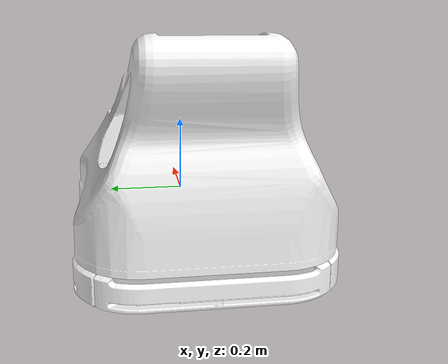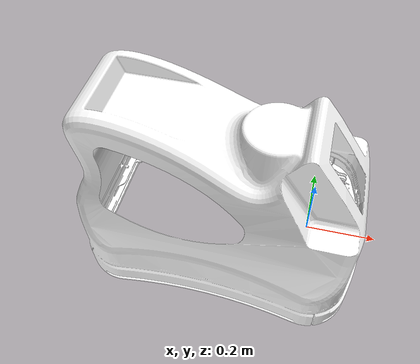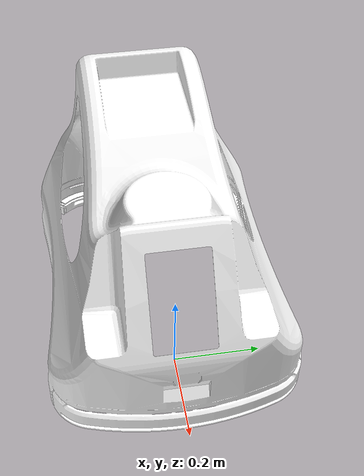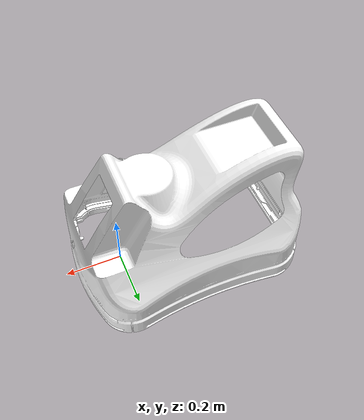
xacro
<?xml version="1.0"?>
<robot
  xmlns:xacro="http://www.ros.org/wiki/xacro"
  name="platform">

    <xacro:include filename="$(find fp_materials)/urdf/materials.urdf.xacro"/>

    <xacro:include
      filename="$(find platform_description)/urdf/sensors.urdf.xacro" />
    <xacro:property
    name="platform_param"
    value="${load_yaml('$(find platform_description)/config/LIOa.yaml')}" />

  <!--xacro:property name="lidar_front_rotation" value="$(env RDSCFG_fp_descriptions_lidar_front_rotation)"/-->
  <xacro:property name="lidar_front_rotation" value="0"/>
  <!--xacro:property name="lidar_back_rotation" value="$(env RDSCFG_fp_descriptions_lidar_back_rotation)"/-->
  <xacro:property name="lidar_back_rotation" value="3.14"/>

  <link name="base_footprint">

  </link>
  <joint name="base_joint" type="fixed">

    <origin xyz="-0.113 0 0" rpy="0 0 0" />
    <parent link="base_footprint"/>
    <child link="platform_base_link" />
  </joint>
   <link name="platform_base_link">
        <visual>
          <geometry>
               <mesh
                filename="package://platform_description/meshes/platform_LIO.STL" />
          </geometry>
          <origin rpy="0 0 1.57" xyz="0 0 -0.07"/>
          <material name="white"/>
         </visual>
  </link>

  <joint name="lidar_front_joint" type="fixed">
    <origin xyz="0.08202 0 -0.01" rpy="0 3.14 ${lidar_front_rotation}" />
    <parent link="base_footprint"/>
    <child link="lidar_front" />
  </joint>
   <link name="lidar_front">
   </link>

  <joint name="lidar_back_joint" type="fixed">
    <origin xyz="-0.41803 0 -0.01" rpy="0 3.14 ${lidar_back_rotation}" />
    <parent link="base_footprint"/>
    <child link="lidar_back" />
  </joint>
   <link name="lidar_back">
   </link>

  <joint name="ultrasonic1_joint" type="fixed">
    <origin xyz="-0.625 -0.095 0.053" rpy="0 0 3.14" />
    <parent link="base_footprint"/>
    <child link="ultrasonic1" />
  </joint>
   <link name="ultrasonic1">
   </link>

  <joint name="ultrasonic2_joint" type="fixed">
    <origin xyz="-0.585 -0.231 0.053" rpy="0 0 -2.355" />
    <parent link="base_footprint"/>
    <child link="ultrasonic2" />
  </joint>
   <link name="ultrasonic2">
   </link>

  <joint name="ultrasonic3_joint" type="fixed">
    <origin xyz="-0.272 -0.255 0.053" rpy="0 0 -1.57" />
    <parent link="base_footprint"/>
    <child link="ultrasonic3" />
  </joint>
   <link name="ultrasonic3">
   </link>

  <joint name="ultrasonic4_joint" type="fixed">
    <origin xyz="0.097 -0.255 0.053" rpy="0 0 -0.785" />
    <parent link="base_footprint"/>
    <child link="ultrasonic4" />
  </joint>
   <link name="ultrasonic4">
   </link>

  <joint name="ultrasonic5_joint" type="fixed">
    <origin xyz="0.145 -0.121 0.053" rpy="0 0 -0.07" />
    <parent link="base_footprint"/>
    <child link="ultrasonic5" />
  </joint>
   <link name="ultrasonic5">
   </link>

  <joint name="ultrasonic6_joint" type="fixed">
    <origin xyz="0.145 0.121 0.053" rpy="0 0 0.07" />
    <parent link="base_footprint"/>
    <child link="ultrasonic6" />
  </joint>
   <link name="ultrasonic6">
   </link>

  <joint name="ultrasonic7_joint" type="fixed">
    <origin xyz="0.097 0.255 0.053" rpy="0 0 0.785" />
    <parent link="base_footprint"/>
    <child link="ultrasonic7" />
  </joint>
   <link name="ultrasonic7">
   </link>

  <joint name="ultrasonic8_joint" type="fixed">
    <origin xyz="-0.272 0.255 0.053" rpy="0 0 1.57" />
    <parent link="base_footprint"/>
    <child link="ultrasonic8" />
  </joint>
   <link name="ultrasonic8">
   </link>

  <joint name="ultrasonic9_joint" type="fixed">
    <origin xyz="-0.585 0.231 0.053" rpy="0 0 2.355" />
    <parent link="base_footprint"/>
    <child link="ultrasonic9" />
  </joint>
   <link name="ultrasonic9">
   </link>

  <joint name="ultrasonic10_joint" type="fixed">
    <origin xyz="-0.625 0.095 0.053" rpy="0 0 3.14" />
    <parent link="base_footprint"/>
    <child link="ultrasonic10" />
  </joint>
   <link name="ultrasonic10">
   </link>

</robot>

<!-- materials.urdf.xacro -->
<robot>

  <material name="blue">
    <color rgba="0.12549019607843137 0.2784313725490196 0.43529411764705883 1"/>
  </material>

  <material name="black">
    <color rgba="0 0 0 1"/>
  </material>

  <material name="white">
    <color rgba="1 1 1 1"/>
  </material>

  <material name="orange">
    <color rgba="1 0.5 0.0 1"/>
  </material>

</robot>
